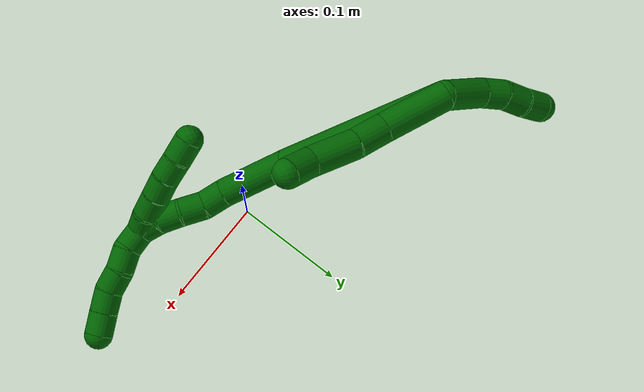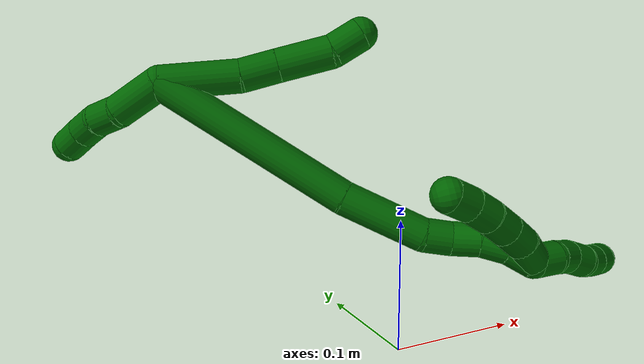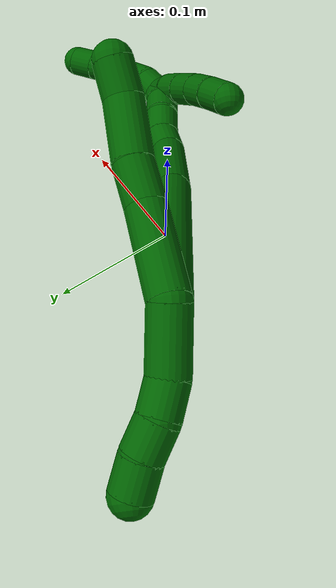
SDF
<sdf version="1.7">
 <world name="default">
  <model name="6">
   <static>0</static>
   <link name="6">
    <collision name="collision-cylinder-e_1_2_8">
     <pose>0.004205 0.004065 0.028261 -0.142849 0.146225 -0.01048</pose>
     <geometry><cylinder><radius>0.0125</radius><length>0.05772</length></cylinder></geometry>
     <surface>
      <friction><ode><mu>1.16</mu><mu2>1.16</mu2><slip1>0</slip1><slip2>0</slip2></ode></friction>
      <contact><ode><kp>1e+06</kp><kd>1</kd><max_vel>0</max_vel><min_depth>0.001</min_depth></ode></contact>
     </surface>
    </collision>
    <visual name="visual-cylinder-e_1_2_8">
     <pose>0.004205 0.004065 0.028261 -0.142849 0.146225 -0.01048</pose>
     <geometry><cylinder><radius>0.0125</radius><length>0.05772</length></cylinder></geometry>
     <material><ambient>0 0.392157 0.003922 1</ambient></material>
    </visual>
    <collision name="collision-cylinder-e_2_8_9">
     <pose>0.00777 0.010159 0.070286 -0.146401 -0.045984 0.003373</pose>
     <geometry><cylinder><radius>0.0125</radius><length>0.027853</length></cylinder></geometry>
     <surface>
      <friction><ode><mu>1.16</mu><mu2>1.16</mu2><slip1>0</slip1><slip2>0</slip2></ode></friction>
      <contact><ode><kp>1e+06</kp><kd>1</kd><max_vel>0</max_vel><min_depth>0.001</min_depth></ode></contact>
     </surface>
    </collision>
    <visual name="visual-cylinder-e_2_8_9">
     <pose>0.00777 0.010159 0.070286 -0.146401 -0.045984 0.003373</pose>
     <geometry><cylinder><radius>0.0125</radius><length>0.027853</length></cylinder></geometry>
     <material><ambient>0 0.392157 0.003922 1</ambient></material>
    </visual>
    <collision name="collision-cylinder-e_3_9_10">
     <pose>0.007045 0.0128 0.104303 -0.030198 -0.004184 6.3e-05</pose>
     <geometry><cylinder><radius>0.0125</radius><length>0.040526</length></cylinder></geometry>
     <surface>
      <friction><ode><mu>1.16</mu><mu2>1.16</mu2><slip1>0</slip1><slip2>0</slip2></ode></friction>
      <contact><ode><kp>1e+06</kp><kd>1</kd><max_vel>0</max_vel><min_depth>0.001</min_depth></ode></contact>
     </surface>
    </collision>
    <visual name="visual-cylinder-e_3_9_10">
     <pose>0.007045 0.0128 0.104303 -0.030198 -0.004184 6.3e-05</pose>
     <geometry><cylinder><radius>0.0125</radius><length>0.040526</length></cylinder></geometry>
     <material><ambient>0 0.392157 0.003922 1</ambient></material>
    </visual>
    <collision name="collision-cylinder-e_4_10_6">
     <pose>0.003229 0.01433 0.135872 -0.080977 -0.317536 0.012973</pose>
     <geometry><cylinder><radius>0.0125</radius><length>0.0239</length></cylinder></geometry>
     <surface>
      <friction><ode><mu>1.16</mu><mu2>1.16</mu2><slip1>0</slip1><slip2>0</slip2></ode></friction>
      <contact><ode><kp>1e+06</kp><kd>1</kd><max_vel>0</max_vel><min_depth>0.001</min_depth></ode></contact>
     </surface>
    </collision>
    <visual name="visual-cylinder-e_4_10_6">
     <pose>0.003229 0.01433 0.135872 -0.080977 -0.317536 0.012973</pose>
     <geometry><cylinder><radius>0.0125</radius><length>0.0239</length></cylinder></geometry>
     <material><ambient>0 0.392157 0.003922 1</ambient></material>
    </visual>
    <collision name="collision-cylinder-e_1_2_11">
     <pose>0.005384 0.004087 -0.018245 -2.92122 0.280369 -1.81174</pose>
     <geometry><cylinder><radius>0.0125</radius><length>0.038914</length></cylinder></geometry>
     <surface>
      <friction><ode><mu>1.16</mu><mu2>1.16</mu2><slip1>0</slip1><slip2>0</slip2></ode></friction>
      <contact><ode><kp>1e+06</kp><kd>1</kd><max_vel>0</max_vel><min_depth>0.001</min_depth></ode></contact>
     </surface>
    </collision>
    <visual name="visual-cylinder-e_1_2_11">
     <pose>0.005384 0.004087 -0.018245 -2.92122 0.280369 -1.81174</pose>
     <geometry><cylinder><radius>0.0125</radius><length>0.038914</length></cylinder></geometry>
     <material><ambient>0 0.392157 0.003922 1</ambient></material>
    </visual>
    <collision name="collision-cylinder-e_2_11_12">
     <pose>0.010961 0.012047 -0.046035 -2.75618 0.018718 -0.095854</pose>
     <geometry><cylinder><radius>0.0125</radius><length>0.020604</length></cylinder></geometry>
     <surface>
      <friction><ode><mu>1.16</mu><mu2>1.16</mu2><slip1>0</slip1><slip2>0</slip2></ode></friction>
      <contact><ode><kp>1e+06</kp><kd>1</kd><max_vel>0</max_vel><min_depth>0.001</min_depth></ode></contact>
     </surface>
    </collision>
    <visual name="visual-cylinder-e_2_11_12">
     <pose>0.010961 0.012047 -0.046035 -2.75618 0.018718 -0.095854</pose>
     <geometry><cylinder><radius>0.0125</radius><length>0.020604</length></cylinder></geometry>
     <material><ambient>0 0.392157 0.003922 1</ambient></material>
    </visual>
    <collision name="collision-cylinder-e_3_12_13">
     <pose>0.012676 0.021661 -0.06377 -2.53016 0.151012 -0.47051</pose>
     <geometry><cylinder><radius>0.0125</radius><length>0.020234</length></cylinder></geometry>
     <surface>
      <friction><ode><mu>1.16</mu><mu2>1.16</mu2><slip1>0</slip1><slip2>0</slip2></ode></friction>
      <contact><ode><kp>1e+06</kp><kd>1</kd><max_vel>0</max_vel><min_depth>0.001</min_depth></ode></contact>
     </surface>
    </collision>
    <visual name="visual-cylinder-e_3_12_13">
     <pose>0.012676 0.021661 -0.06377 -2.53016 0.151012 -0.47051</pose>
     <geometry><cylinder><radius>0.0125</radius><length>0.020234</length></cylinder></geometry>
     <material><ambient>0 0.392157 0.003922 1</ambient></material>
    </visual>
    <collision name="collision-cylinder-e_4_13_5">
     <pose>0.016845 0.03202 -0.080571 -2.64931 0.264533 -0.974023</pose>
     <geometry><cylinder><radius>0.0125</radius><length>0.020247</length></cylinder></geometry>
     <surface>
      <friction><ode><mu>1.16</mu><mu2>1.16</mu2><slip1>0</slip1><slip2>0</slip2></ode></friction>
      <contact><ode><kp>1e+06</kp><kd>1</kd><max_vel>0</max_vel><min_depth>0.001</min_depth></ode></contact>
     </surface>
    </collision>
    <visual name="visual-cylinder-e_4_13_5">
     <pose>0.016845 0.03202 -0.080571 -2.64931 0.264533 -0.974023</pose>
     <geometry><cylinder><radius>0.0125</radius><length>0.020247</length></cylinder></geometry>
     <material><ambient>0 0.392157 0.003922 1</ambient></material>
    </visual>
    <collision name="collision-cylinder-e_1_2_14">
     <pose>0.055624 0.006068 0.053369 -0.113213 0.802876 -0.0481</pose>
     <geometry><cylinder><radius>0.0125</radius><length>0.154651</length></cylinder></geometry>
     <surface>
      <friction><ode><mu>1.16</mu><mu2>1.16</mu2><slip1>0</slip1><slip2>0</slip2></ode></friction>
      <contact><ode><kp>1e+06</kp><kd>1</kd><max_vel>0</max_vel><min_depth>0.001</min_depth></ode></contact>
     </surface>
    </collision>
    <visual name="visual-cylinder-e_1_2_14">
     <pose>0.055624 0.006068 0.053369 -0.113213 0.802876 -0.0481</pose>
     <geometry><cylinder><radius>0.0125</radius><length>0.154651</length></cylinder></geometry>
     <material><ambient>0 0.392157 0.003922 1</ambient></material>
    </visual>
    <collision name="collision-cylinder-e_2_14_15">
     <pose>0.130785 0.015781 0.130843 -0.150082 0.675568 -0.052802</pose>
     <geometry><cylinder><radius>0.0125</radius><length>0.06248</length></cylinder></geometry>
     <surface>
      <friction><ode><mu>1.16</mu><mu2>1.16</mu2><slip1>0</slip1><slip2>0</slip2></ode></friction>
      <contact><ode><kp>1e+06</kp><kd>1</kd><max_vel>0</max_vel><min_depth>0.001</min_depth></ode></contact>
     </surface>
    </collision>
    <visual name="visual-cylinder-e_2_14_15">
     <pose>0.130785 0.015781 0.130843 -0.150082 0.675568 -0.052802</pose>
     <geometry><cylinder><radius>0.0125</radius><length>0.06248</length></cylinder></geometry>
     <material><ambient>0 0.392157 0.003922 1</ambient></material>
    </visual>
    <collision name="collision-cylinder-e_3_15_16">
     <pose>0.154032 0.021689 0.164253 -0.238556 0.369764 -0.044819</pose>
     <geometry><cylinder><radius>0.0125</radius><length>0.020542</length></cylinder></geometry>
     <surface>
      <friction><ode><mu>1.16</mu><mu2>1.16</mu2><slip1>0</slip1><slip2>0</slip2></ode></friction>
      <contact><ode><kp>1e+06</kp><kd>1</kd><max_vel>0</max_vel><min_depth>0.001</min_depth></ode></contact>
     </surface>
    </collision>
    <visual name="visual-cylinder-e_3_15_16">
     <pose>0.154032 0.021689 0.164253 -0.238556 0.369764 -0.044819</pose>
     <geometry><cylinder><radius>0.0125</radius><length>0.020542</length></cylinder></geometry>
     <material><ambient>0 0.392157 0.003922 1</ambient></material>
    </visual>
    <collision name="collision-cylinder-e_4_16_17">
     <pose>0.160713 0.023497 0.183701 0.04482 0.284468 0.006419</pose>
     <geometry><cylinder><radius>0.0125</radius><length>0.021156</length></cylinder></geometry>
     <surface>
      <friction><ode><mu>1.16</mu><mu2>1.16</mu2><slip1>0</slip1><slip2>0</slip2></ode></friction>
      <contact><ode><kp>1e+06</kp><kd>1</kd><max_vel>0</max_vel><min_depth>0.001</min_depth></ode></contact>
     </surface>
    </collision>
    <visual name="visual-cylinder-e_4_16_17">
     <pose>0.160713 0.023497 0.183701 0.04482 0.284468 0.006419</pose>
     <geometry><cylinder><radius>0.0125</radius><length>0.021156</length></cylinder></geometry>
     <material><ambient>0 0.392157 0.003922 1</ambient></material>
    </visual>
    <collision name="collision-cylinder-e_5_17_18">
     <pose>0.168594 0.023175 0.202602 -0.015099 0.51114 -0.003945</pose>
     <geometry><cylinder><radius>0.0125</radius><length>0.020087</length></cylinder></geometry>
     <surface>
      <friction><ode><mu>1.16</mu><mu2>1.16</mu2><slip1>0</slip1><slip2>0</slip2></ode></friction>
      <contact><ode><kp>1e+06</kp><kd>1</kd><max_vel>0</max_vel><min_depth>0.001</min_depth></ode></contact>
     </surface>
    </collision>
    <visual name="visual-cylinder-e_5_17_18">
     <pose>0.168594 0.023175 0.202602 -0.015099 0.51114 -0.003945</pose>
     <geometry><cylinder><radius>0.0125</radius><length>0.020087</length></cylinder></geometry>
     <material><ambient>0 0.392157 0.003922 1</ambient></material>
    </visual>
    <collision name="collision-cylinder-e_6_18_1">
     <pose>0.180587 0.025144 0.218954 -0.237412 0.736261 -0.091941</pose>
     <geometry><cylinder><radius>0.0125</radius><length>0.021085</length></cylinder></geometry>
     <surface>
      <friction><ode><mu>1.16</mu><mu2>1.16</mu2><slip1>0</slip1><slip2>0</slip2></ode></friction>
      <contact><ode><kp>1e+06</kp><kd>1</kd><max_vel>0</max_vel><min_depth>0.001</min_depth></ode></contact>
     </surface>
    </collision>
    <visual name="visual-cylinder-e_6_18_1">
     <pose>0.180587 0.025144 0.218954 -0.237412 0.736261 -0.091941</pose>
     <geometry><cylinder><radius>0.0125</radius><length>0.021085</length></cylinder></geometry>
     <material><ambient>0 0.392157 0.003922 1</ambient></material>
    </visual>
    <collision name="collision-cylinder-e_1_1_19">
     <pose>0.188529 0.032459 0.234868 -0.582172 0.086419 -0.025905</pose>
     <geometry><cylinder><radius>0.0125</radius><length>0.02</length></cylinder></geometry>
     <surface>
      <friction><ode><mu>1.16</mu><mu2>1.16</mu2><slip1>0</slip1><slip2>0</slip2></ode></friction>
      <contact><ode><kp>1e+06</kp><kd>1</kd><max_vel>0</max_vel><min_depth>0.001</min_depth></ode></contact>
     </surface>
    </collision>
    <visual name="visual-cylinder-e_1_1_19">
     <pose>0.188529 0.032459 0.234868 -0.582172 0.086419 -0.025905</pose>
     <geometry><cylinder><radius>0.0125</radius><length>0.02</length></cylinder></geometry>
     <material><ambient>0 0.392157 0.003922 1</ambient></material>
    </visual>
    <collision name="collision-cylinder-e_2_19_20">
     <pose>0.190851 0.045799 0.249195 -0.918459 0.14637 -0.072476</pose>
     <geometry><cylinder><radius>0.0125</radius><length>0.02</length></cylinder></geometry>
     <surface>
      <friction><ode><mu>1.16</mu><mu2>1.16</mu2><slip1>0</slip1><slip2>0</slip2></ode></friction>
      <contact><ode><kp>1e+06</kp><kd>1</kd><max_vel>0</max_vel><min_depth>0.001</min_depth></ode></contact>
     </surface>
    </collision>
    <visual name="visual-cylinder-e_2_19_20">
     <pose>0.190851 0.045799 0.249195 -0.918459 0.14637 -0.072476</pose>
     <geometry><cylinder><radius>0.0125</radius><length>0.02</length></cylinder></geometry>
     <material><ambient>0 0.392157 0.003922 1</ambient></material>
    </visual>
    <collision name="collision-cylinder-e_3_20_21">
     <pose>0.195941 0.060248 0.261789 -0.785373 0.371685 -0.155435</pose>
     <geometry><cylinder><radius>0.0125</radius><length>0.02</length></cylinder></geometry>
     <surface>
      <friction><ode><mu>1.16</mu><mu2>1.16</mu2><slip1>0</slip1><slip2>0</slip2></ode></friction>
      <contact><ode><kp>1e+06</kp><kd>1</kd><max_vel>0</max_vel><min_depth>0.001</min_depth></ode></contact>
     </surface>
    </collision>
    <visual name="visual-cylinder-e_3_20_21">
     <pose>0.195941 0.060248 0.261789 -0.785373 0.371685 -0.155435</pose>
     <geometry><cylinder><radius>0.0125</radius><length>0.02</length></cylinder></geometry>
     <material><ambient>0 0.392157 0.003922 1</ambient></material>
    </visual>
    <collision name="collision-cylinder-e_4_21_22">
     <pose>0.201099 0.07522 0.273611 -1.01274 0.153229 -0.085096</pose>
     <geometry><cylinder><radius>0.0125</radius><length>0.02</length></cylinder></geometry>
     <surface>
      <friction><ode><mu>1.16</mu><mu2>1.16</mu2><slip1>0</slip1><slip2>0</slip2></ode></friction>
      <contact><ode><kp>1e+06</kp><kd>1</kd><max_vel>0</max_vel><min_depth>0.001</min_depth></ode></contact>
     </surface>
    </collision>
    <visual name="visual-cylinder-e_4_21_22">
     <pose>0.201099 0.07522 0.273611 -1.01274 0.153229 -0.085096</pose>
     <geometry><cylinder><radius>0.0125</radius><length>0.02</length></cylinder></geometry>
     <material><ambient>0 0.392157 0.003922 1</ambient></material>
    </visual>
    <collision name="collision-cylinder-e_5_22_4">
     <pose>0.203583 0.092076 0.28407 -1.01812 0.095851 -0.053525</pose>
     <geometry><cylinder><radius>0.0125</radius><length>0.02</length></cylinder></geometry>
     <surface>
      <friction><ode><mu>1.16</mu><mu2>1.16</mu2><slip1>0</slip1><slip2>0</slip2></ode></friction>
      <contact><ode><kp>1e+06</kp><kd>1</kd><max_vel>0</max_vel><min_depth>0.001</min_depth></ode></contact>
     </surface>
    </collision>
    <visual name="visual-cylinder-e_5_22_4">
     <pose>0.203583 0.092076 0.28407 -1.01812 0.095851 -0.053525</pose>
     <geometry><cylinder><radius>0.0125</radius><length>0.02</length></cylinder></geometry>
     <material><ambient>0 0.392157 0.003922 1</ambient></material>
    </visual>
    <collision name="collision-cylinder-e_1_1_23">
     <pose>0.180286 0.020973 0.223475 2.04328 -0.830168 -1.24823</pose>
     <geometry><cylinder><radius>0.0125</radius><length>0.02</length></cylinder></geometry>
     <surface>
      <friction><ode><mu>1.16</mu><mu2>1.16</mu2><slip1>0</slip1><slip2>0</slip2></ode></friction>
      <contact><ode><kp>1e+06</kp><kd>1</kd><max_vel>0</max_vel><min_depth>0.001</min_depth></ode></contact>
     </surface>
    </collision>
    <visual name="visual-cylinder-e_1_1_23">
     <pose>0.180286 0.020973 0.223475 2.04328 -0.830168 -1.24823</pose>
     <geometry><cylinder><radius>0.0125</radius><length>0.02</length></cylinder></geometry>
     <material><ambient>0 0.392157 0.003922 1</ambient></material>
    </visual>
    <collision name="collision-cylinder-e_2_23_24">
     <pose>0.166664 0.008866 0.21552 2.24612 -0.673969 -1.26048</pose>
     <geometry><cylinder><radius>0.0125</radius><length>0.02</length></cylinder></geometry>
     <surface>
      <friction><ode><mu>1.16</mu><mu2>1.16</mu2><slip1>0</slip1><slip2>0</slip2></ode></friction>
      <contact><ode><kp>1e+06</kp><kd>1</kd><max_vel>0</max_vel><min_depth>0.001</min_depth></ode></contact>
     </surface>
    </collision>
    <visual name="visual-cylinder-e_2_23_24">
     <pose>0.166664 0.008866 0.21552 2.24612 -0.673969 -1.26048</pose>
     <geometry><cylinder><radius>0.0125</radius><length>0.02</length></cylinder></geometry>
     <material><ambient>0 0.392157 0.003922 1</ambient></material>
    </visual>
    <collision name="collision-cylinder-e_3_24_25">
     <pose>0.154576 -0.003486 0.205468 2.26141 -0.624569 -1.20201</pose>
     <geometry><cylinder><radius>0.0125</radius><length>0.02</length></cylinder></geometry>
     <surface>
      <friction><ode><mu>1.16</mu><mu2>1.16</mu2><slip1>0</slip1><slip2>0</slip2></ode></friction>
      <contact><ode><kp>1e+06</kp><kd>1</kd><max_vel>0</max_vel><min_depth>0.001</min_depth></ode></contact>
     </surface>
    </collision>
    <visual name="visual-cylinder-e_3_24_25">
     <pose>0.154576 -0.003486 0.205468 2.26141 -0.624569 -1.20201</pose>
     <geometry><cylinder><radius>0.0125</radius><length>0.02</length></cylinder></geometry>
     <material><ambient>0 0.392157 0.003922 1</ambient></material>
    </visual>
    <collision name="collision-cylinder-e_4_25_26">
     <pose>0.143171 -0.015499 0.194306 2.37607 -0.589297 -1.29182</pose>
     <geometry><cylinder><radius>0.0125</radius><length>0.02</length></cylinder></geometry>
     <surface>
      <friction><ode><mu>1.16</mu><mu2>1.16</mu2><slip1>0</slip1><slip2>0</slip2></ode></friction>
      <contact><ode><kp>1e+06</kp><kd>1</kd><max_vel>0</max_vel><min_depth>0.001</min_depth></ode></contact>
     </surface>
    </collision>
    <visual name="visual-cylinder-e_4_25_26">
     <pose>0.143171 -0.015499 0.194306 2.37607 -0.589297 -1.29182</pose>
     <geometry><cylinder><radius>0.0125</radius><length>0.02</length></cylinder></geometry>
     <material><ambient>0 0.392157 0.003922 1</ambient></material>
    </visual>
    <collision name="collision-cylinder-e_5_26_3">
     <pose>0.133094 -0.027436 0.181876 2.37682 -0.4689 -1.0718</pose>
     <geometry><cylinder><radius>0.0125</radius><length>0.02</length></cylinder></geometry>
     <surface>
      <friction><ode><mu>1.16</mu><mu2>1.16</mu2><slip1>0</slip1><slip2>0</slip2></ode></friction>
      <contact><ode><kp>1e+06</kp><kd>1</kd><max_vel>0</max_vel><min_depth>0.001</min_depth></ode></contact>
     </surface>
    </collision>
    <visual name="visual-cylinder-e_5_26_3">
     <pose>0.133094 -0.027436 0.181876 2.37682 -0.4689 -1.0718</pose>
     <geometry><cylinder><radius>0.0125</radius><length>0.02</length></cylinder></geometry>
     <material><ambient>0 0.392157 0.003922 1</ambient></material>
    </visual>
    <collision name="collision-sphere-3">
     <pose>0.128575 -0.033613 0.175439 0 -0 0</pose>
     <geometry><sphere><radius>0.0125</radius></sphere></geometry>
     <surface>
      <friction><ode><mu>1.16</mu><mu2>1.16</mu2><slip1>0</slip1><slip2>0</slip2></ode></friction>
      <contact><ode><kp>1e+06</kp><kd>1</kd><max_vel>0</max_vel><min_depth>0.001</min_depth></ode></contact>
     </surface>
    </collision>
    <visual name="visual-sphere-3">
     <pose>0.128575 -0.033613 0.175439 0 -0 0</pose>
     <geometry><sphere><radius>0.0125</radius></sphere></geometry>
     <material><ambient>0 0.392157 0.003922 1</ambient></material>
    </visual>
    <collision name="collision-sphere-26">
     <pose>0.137613 -0.02126 0.188312 0 -0 0</pose>
     <geometry><sphere><radius>0.0125</radius></sphere></geometry>
     <surface>
      <friction><ode><mu>1.16</mu><mu2>1.16</mu2><slip1>0</slip1><slip2>0</slip2></ode></friction>
      <contact><ode><kp>1e+06</kp><kd>1</kd><max_vel>0</max_vel><min_depth>0.001</min_depth></ode></contact>
     </surface>
    </collision>
    <visual name="visual-sphere-26">
     <pose>0.137613 -0.02126 0.188312 0 -0 0</pose>
     <geometry><sphere><radius>0.0125</radius></sphere></geometry>
     <material><ambient>0 0.392157 0.003922 1</ambient></material>
    </visual>
    <collision name="collision-sphere-25">
     <pose>0.148728 -0.009739 0.2003 0 -0 0</pose>
     <geometry><sphere><radius>0.0125</radius></sphere></geometry>
     <surface>
      <friction><ode><mu>1.16</mu><mu2>1.16</mu2><slip1>0</slip1><slip2>0</slip2></ode></friction>
      <contact><ode><kp>1e+06</kp><kd>1</kd><max_vel>0</max_vel><min_depth>0.001</min_depth></ode></contact>
     </surface>
    </collision>
    <visual name="visual-sphere-25">
     <pose>0.148728 -0.009739 0.2003 0 -0 0</pose>
     <geometry><sphere><radius>0.0125</radius></sphere></geometry>
     <material><ambient>0 0.392157 0.003922 1</ambient></material>
    </visual>
    <collision name="collision-sphere-24">
     <pose>0.160423 0.002768 0.210636 0 -0 0</pose>
     <geometry><sphere><radius>0.0125</radius></sphere></geometry>
     <surface>
      <friction><ode><mu>1.16</mu><mu2>1.16</mu2><slip1>0</slip1><slip2>0</slip2></ode></friction>
      <contact><ode><kp>1e+06</kp><kd>1</kd><max_vel>0</max_vel><min_depth>0.001</min_depth></ode></contact>
     </surface>
    </collision>
    <visual name="visual-sphere-24">
     <pose>0.160423 0.002768 0.210636 0 -0 0</pose>
     <geometry><sphere><radius>0.0125</radius></sphere></geometry>
     <material><ambient>0 0.392157 0.003922 1</ambient></material>
    </visual>
    <collision name="collision-sphere-23">
     <pose>0.172905 0.014965 0.220405 0 -0 0</pose>
     <geometry><sphere><radius>0.0125</radius></sphere></geometry>
     <surface>
      <friction><ode><mu>1.16</mu><mu2>1.16</mu2><slip1>0</slip1><slip2>0</slip2></ode></friction>
      <contact><ode><kp>1e+06</kp><kd>1</kd><max_vel>0</max_vel><min_depth>0.001</min_depth></ode></contact>
     </surface>
    </collision>
    <visual name="visual-sphere-23">
     <pose>0.172905 0.014965 0.220405 0 -0 0</pose>
     <geometry><sphere><radius>0.0125</radius></sphere></geometry>
     <material><ambient>0 0.392157 0.003922 1</ambient></material>
    </visual>
    <collision name="collision-sphere-4">
     <pose>0.20454 0.100548 0.289295 0 -0 0</pose>
     <geometry><sphere><radius>0.0125</radius></sphere></geometry>
     <surface>
      <friction><ode><mu>1.16</mu><mu2>1.16</mu2><slip1>0</slip1><slip2>0</slip2></ode></friction>
      <contact><ode><kp>1e+06</kp><kd>1</kd><max_vel>0</max_vel><min_depth>0.001</min_depth></ode></contact>
     </surface>
    </collision>
    <visual name="visual-sphere-4">
     <pose>0.20454 0.100548 0.289295 0 -0 0</pose>
     <geometry><sphere><radius>0.0125</radius></sphere></geometry>
     <material><ambient>0 0.392157 0.003922 1</ambient></material>
    </visual>
    <collision name="collision-sphere-22">
     <pose>0.202626 0.083603 0.278844 0 -0 0</pose>
     <geometry><sphere><radius>0.0125</radius></sphere></geometry>
     <surface>
      <friction><ode><mu>1.16</mu><mu2>1.16</mu2><slip1>0</slip1><slip2>0</slip2></ode></friction>
      <contact><ode><kp>1e+06</kp><kd>1</kd><max_vel>0</max_vel><min_depth>0.001</min_depth></ode></contact>
     </surface>
    </collision>
    <visual name="visual-sphere-22">
     <pose>0.202626 0.083603 0.278844 0 -0 0</pose>
     <geometry><sphere><radius>0.0125</radius></sphere></geometry>
     <material><ambient>0 0.392157 0.003922 1</ambient></material>
    </visual>
    <collision name="collision-sphere-21">
     <pose>0.199573 0.066837 0.268377 0 -0 0</pose>
     <geometry><sphere><radius>0.0125</radius></sphere></geometry>
     <surface>
      <friction><ode><mu>1.16</mu><mu2>1.16</mu2><slip1>0</slip1><slip2>0</slip2></ode></friction>
      <contact><ode><kp>1e+06</kp><kd>1</kd><max_vel>0</max_vel><min_depth>0.001</min_depth></ode></contact>
     </surface>
    </collision>
    <visual name="visual-sphere-21">
     <pose>0.199573 0.066837 0.268377 0 -0 0</pose>
     <geometry><sphere><radius>0.0125</radius></sphere></geometry>
     <material><ambient>0 0.392157 0.003922 1</ambient></material>
    </visual>
    <collision name="collision-sphere-20">
     <pose>0.192309 0.05366 0.2552 0 -0 0</pose>
     <geometry><sphere><radius>0.0125</radius></sphere></geometry>
     <surface>
      <friction><ode><mu>1.16</mu><mu2>1.16</mu2><slip1>0</slip1><slip2>0</slip2></ode></friction>
      <contact><ode><kp>1e+06</kp><kd>1</kd><max_vel>0</max_vel><min_depth>0.001</min_depth></ode></contact>
     </surface>
    </collision>
    <visual name="visual-sphere-20">
     <pose>0.192309 0.05366 0.2552 0 -0 0</pose>
     <geometry><sphere><radius>0.0125</radius></sphere></geometry>
     <material><ambient>0 0.392157 0.003922 1</ambient></material>
    </visual>
    <collision name="collision-sphere-11">
     <pose>0.010768 0.008174 -0.03649 0 -0 0</pose>
     <geometry><sphere><radius>0.0125</radius></sphere></geometry>
     <surface>
      <friction><ode><mu>1.16</mu><mu2>1.16</mu2><slip1>0</slip1><slip2>0</slip2></ode></friction>
      <contact><ode><kp>1e+06</kp><kd>1</kd><max_vel>0</max_vel><min_depth>0.001</min_depth></ode></contact>
     </surface>
    </collision>
    <visual name="visual-sphere-11">
     <pose>0.010768 0.008174 -0.03649 0 -0 0</pose>
     <geometry><sphere><radius>0.0125</radius></sphere></geometry>
     <material><ambient>0 0.392157 0.003922 1</ambient></material>
    </visual>
    <collision name="collision-sphere-6">
     <pose>-0.000502 0.015249 0.147187 0 -0 0</pose>
     <geometry><sphere><radius>0.0125</radius></sphere></geometry>
     <surface>
      <friction><ode><mu>1.16</mu><mu2>1.16</mu2><slip1>0</slip1><slip2>0</slip2></ode></friction>
      <contact><ode><kp>1e+06</kp><kd>1</kd><max_vel>0</max_vel><min_depth>0.001</min_depth></ode></contact>
     </surface>
    </collision>
    <visual name="visual-sphere-6">
     <pose>-0.000502 0.015249 0.147187 0 -0 0</pose>
     <geometry><sphere><radius>0.0125</radius></sphere></geometry>
     <material><ambient>0 0.392157 0.003922 1</ambient></material>
    </visual>
    <collision name="collision-sphere-10">
     <pose>0.00696 0.013412 0.124556 0 -0 0</pose>
     <geometry><sphere><radius>0.0125</radius></sphere></geometry>
     <surface>
      <friction><ode><mu>1.16</mu><mu2>1.16</mu2><slip1>0</slip1><slip2>0</slip2></ode></friction>
      <contact><ode><kp>1e+06</kp><kd>1</kd><max_vel>0</max_vel><min_depth>0.001</min_depth></ode></contact>
     </surface>
    </collision>
    <visual name="visual-sphere-10">
     <pose>0.00696 0.013412 0.124556 0 -0 0</pose>
     <geometry><sphere><radius>0.0125</radius></sphere></geometry>
     <material><ambient>0 0.392157 0.003922 1</ambient></material>
    </visual>
    <collision name="collision-sphere-9">
     <pose>0.00713 0.012189 0.084049 0 -0 0</pose>
     <geometry><sphere><radius>0.0125</radius></sphere></geometry>
     <surface>
      <friction><ode><mu>1.16</mu><mu2>1.16</mu2><slip1>0</slip1><slip2>0</slip2></ode></friction>
      <contact><ode><kp>1e+06</kp><kd>1</kd><max_vel>0</max_vel><min_depth>0.001</min_depth></ode></contact>
     </surface>
    </collision>
    <visual name="visual-sphere-9">
     <pose>0.00713 0.012189 0.084049 0 -0 0</pose>
     <geometry><sphere><radius>0.0125</radius></sphere></geometry>
     <material><ambient>0 0.392157 0.003922 1</ambient></material>
    </visual>
    <collision name="collision-sphere-2">
     <geometry><sphere><radius>0.0125</radius></sphere></geometry>
     <surface>
      <friction><ode><mu>1.16</mu><mu2>1.16</mu2><slip1>0</slip1><slip2>0</slip2></ode></friction>
      <contact><ode><kp>1e+06</kp><kd>1</kd><max_vel>0</max_vel><min_depth>0.001</min_depth></ode></contact>
     </surface>
    </collision>
    <visual name="visual-sphere-2">
     <geometry><sphere><radius>0.0125</radius></sphere></geometry>
     <material><ambient>0 0.392157 0.003922 1</ambient></material>
    </visual>
    <collision name="collision-sphere-19">
     <pose>0.189392 0.037937 0.243189 0 -0 0</pose>
     <geometry><sphere><radius>0.0125</radius></sphere></geometry>
     <surface>
      <friction><ode><mu>1.16</mu><mu2>1.16</mu2><slip1>0</slip1><slip2>0</slip2></ode></friction>
      <contact><ode><kp>1e+06</kp><kd>1</kd><max_vel>0</max_vel><min_depth>0.001</min_depth></ode></contact>
     </surface>
    </collision>
    <visual name="visual-sphere-19">
     <pose>0.189392 0.037937 0.243189 0 -0 0</pose>
     <geometry><sphere><radius>0.0125</radius></sphere></geometry>
     <material><ambient>0 0.392157 0.003922 1</ambient></material>
    </visual>
    <collision name="collision-sphere-8">
     <pose>0.00841 0.00813 0.056523 0 -0 0</pose>
     <geometry><sphere><radius>0.0125</radius></sphere></geometry>
     <surface>
      <friction><ode><mu>1.16</mu><mu2>1.16</mu2><slip1>0</slip1><slip2>0</slip2></ode></friction>
      <contact><ode><kp>1e+06</kp><kd>1</kd><max_vel>0</max_vel><min_depth>0.001</min_depth></ode></contact>
     </surface>
    </collision>
    <visual name="visual-sphere-8">
     <pose>0.00841 0.00813 0.056523 0 -0 0</pose>
     <geometry><sphere><radius>0.0125</radius></sphere></geometry>
     <material><ambient>0 0.392157 0.003922 1</ambient></material>
    </visual>
    <collision name="collision-sphere-12">
     <pose>0.011154 0.015919 -0.05558 0 -0 0</pose>
     <geometry><sphere><radius>0.0125</radius></sphere></geometry>
     <surface>
      <friction><ode><mu>1.16</mu><mu2>1.16</mu2><slip1>0</slip1><slip2>0</slip2></ode></friction>
      <contact><ode><kp>1e+06</kp><kd>1</kd><max_vel>0</max_vel><min_depth>0.001</min_depth></ode></contact>
     </surface>
    </collision>
    <visual name="visual-sphere-12">
     <pose>0.011154 0.015919 -0.05558 0 -0 0</pose>
     <geometry><sphere><radius>0.0125</radius></sphere></geometry>
     <material><ambient>0 0.392157 0.003922 1</ambient></material>
    </visual>
    <collision name="collision-sphere-13">
     <pose>0.014198 0.027402 -0.07196 0 -0 0</pose>
     <geometry><sphere><radius>0.0125</radius></sphere></geometry>
     <surface>
      <friction><ode><mu>1.16</mu><mu2>1.16</mu2><slip1>0</slip1><slip2>0</slip2></ode></friction>
      <contact><ode><kp>1e+06</kp><kd>1</kd><max_vel>0</max_vel><min_depth>0.001</min_depth></ode></contact>
     </surface>
    </collision>
    <visual name="visual-sphere-13">
     <pose>0.014198 0.027402 -0.07196 0 -0 0</pose>
     <geometry><sphere><radius>0.0125</radius></sphere></geometry>
     <material><ambient>0 0.392157 0.003922 1</ambient></material>
    </visual>
    <collision name="collision-sphere-5">
     <pose>0.019491 0.036639 -0.089182 0 -0 0</pose>
     <geometry><sphere><radius>0.0125</radius></sphere></geometry>
     <surface>
      <friction><ode><mu>1.16</mu><mu2>1.16</mu2><slip1>0</slip1><slip2>0</slip2></ode></friction>
      <contact><ode><kp>1e+06</kp><kd>1</kd><max_vel>0</max_vel><min_depth>0.001</min_depth></ode></contact>
     </surface>
    </collision>
    <visual name="visual-sphere-5">
     <pose>0.019491 0.036639 -0.089182 0 -0 0</pose>
     <geometry><sphere><radius>0.0125</radius></sphere></geometry>
     <material><ambient>0 0.392157 0.003922 1</ambient></material>
    </visual>
    <collision name="collision-sphere-14">
     <pose>0.111249 0.012136 0.106739 0 -0 0</pose>
     <geometry><sphere><radius>0.0125</radius></sphere></geometry>
     <surface>
      <friction><ode><mu>1.16</mu><mu2>1.16</mu2><slip1>0</slip1><slip2>0</slip2></ode></friction>
      <contact><ode><kp>1e+06</kp><kd>1</kd><max_vel>0</max_vel><min_depth>0.001</min_depth></ode></contact>
     </surface>
    </collision>
    <visual name="visual-sphere-14">
     <pose>0.111249 0.012136 0.106739 0 -0 0</pose>
     <geometry><sphere><radius>0.0125</radius></sphere></geometry>
     <material><ambient>0 0.392157 0.003922 1</ambient></material>
    </visual>
    <collision name="collision-sphere-15">
     <pose>0.15032 0.019426 0.154947 0 -0 0</pose>
     <geometry><sphere><radius>0.0125</radius></sphere></geometry>
     <surface>
      <friction><ode><mu>1.16</mu><mu2>1.16</mu2><slip1>0</slip1><slip2>0</slip2></ode></friction>
      <contact><ode><kp>1e+06</kp><kd>1</kd><max_vel>0</max_vel><min_depth>0.001</min_depth></ode></contact>
     </surface>
    </collision>
    <visual name="visual-sphere-15">
     <pose>0.15032 0.019426 0.154947 0 -0 0</pose>
     <geometry><sphere><radius>0.0125</radius></sphere></geometry>
     <material><ambient>0 0.392157 0.003922 1</ambient></material>
    </visual>
    <collision name="collision-sphere-16">
     <pose>0.157744 0.023952 0.173558 0 -0 0</pose>
     <geometry><sphere><radius>0.0125</radius></sphere></geometry>
     <surface>
      <friction><ode><mu>1.16</mu><mu2>1.16</mu2><slip1>0</slip1><slip2>0</slip2></ode></friction>
      <contact><ode><kp>1e+06</kp><kd>1</kd><max_vel>0</max_vel><min_depth>0.001</min_depth></ode></contact>
     </surface>
    </collision>
    <visual name="visual-sphere-16">
     <pose>0.157744 0.023952 0.173558 0 -0 0</pose>
     <geometry><sphere><radius>0.0125</radius></sphere></geometry>
     <material><ambient>0 0.392157 0.003922 1</ambient></material>
    </visual>
    <collision name="collision-sphere-17">
     <pose>0.163681 0.023042 0.193844 0 -0 0</pose>
     <geometry><sphere><radius>0.0125</radius></sphere></geometry>
     <surface>
      <friction><ode><mu>1.16</mu><mu2>1.16</mu2><slip1>0</slip1><slip2>0</slip2></ode></friction>
      <contact><ode><kp>1e+06</kp><kd>1</kd><max_vel>0</max_vel><min_depth>0.001</min_depth></ode></contact>
     </surface>
    </collision>
    <visual name="visual-sphere-17">
     <pose>0.163681 0.023042 0.193844 0 -0 0</pose>
     <geometry><sphere><radius>0.0125</radius></sphere></geometry>
     <material><ambient>0 0.392157 0.003922 1</ambient></material>
    </visual>
    <collision name="collision-sphere-18">
     <pose>0.173507 0.023307 0.211361 0 -0 0</pose>
     <geometry><sphere><radius>0.0125</radius></sphere></geometry>
     <surface>
      <friction><ode><mu>1.16</mu><mu2>1.16</mu2><slip1>0</slip1><slip2>0</slip2></ode></friction>
      <contact><ode><kp>1e+06</kp><kd>1</kd><max_vel>0</max_vel><min_depth>0.001</min_depth></ode></contact>
     </surface>
    </collision>
    <visual name="visual-sphere-18">
     <pose>0.173507 0.023307 0.211361 0 -0 0</pose>
     <geometry><sphere><radius>0.0125</radius></sphere></geometry>
     <material><ambient>0 0.392157 0.003922 1</ambient></material>
    </visual>
    <collision name="collision-sphere-1">
     <pose>0.187666 0.026981 0.226546 0 -0 0</pose>
     <geometry><sphere><radius>0.0125</radius></sphere></geometry>
     <surface>
      <friction><ode><mu>1.16</mu><mu2>1.16</mu2><slip1>0</slip1><slip2>0</slip2></ode></friction>
      <contact><ode><kp>1e+06</kp><kd>1</kd><max_vel>0</max_vel><min_depth>0.001</min_depth></ode></contact>
     </surface>
    </collision>
    <visual name="visual-sphere-1">
     <pose>0.187666 0.026981 0.226546 0 -0 0</pose>
     <geometry><sphere><radius>0.0125</radius></sphere></geometry>
     <material><ambient>0 0.392157 0.003922 1</ambient></material>
    </visual>
    <inertial>
     <pose>0.090057 0.016693 0.113789 0 -0 0</pose>
     <mass>0.75</mass>
     <inertia>
      <ixx>0.00027</ixx>
      <ixy>0</ixy>
      <ixz>0</ixz>
      <iyy>0.000359</iyy>
      <iyz>0</iyz>
      <izz>-0.000257</izz>
     </inertia>
    </inertial>
   </link>
   <pose>-0.142109 0.099506 0.196013 -0.847615 1.18002 -1.36365</pose>
  </model>
 </world>
</sdf>
